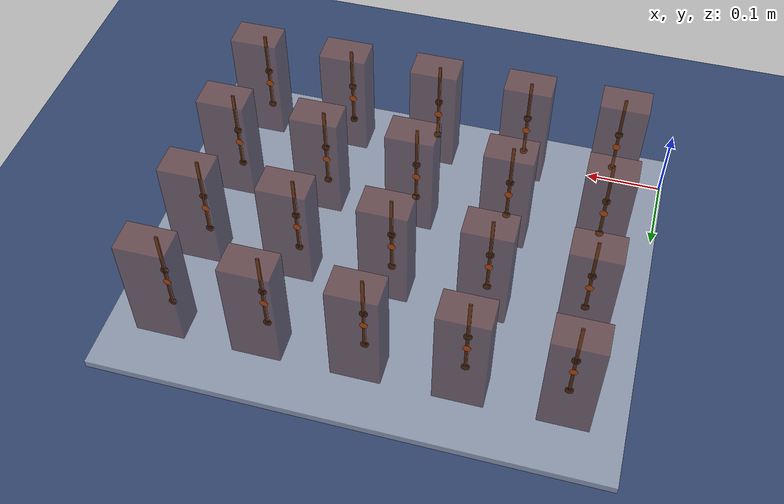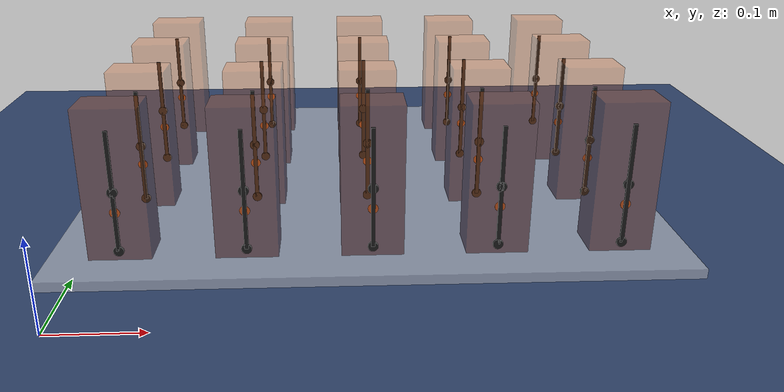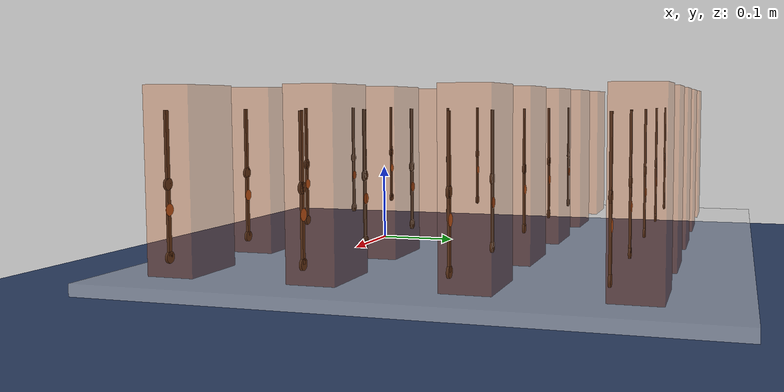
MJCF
<mujoco model="pendulum">
    <option gravity="0 0 -9.81" integrator="implicit" timestep="0.0001" iterations="1000" solver="Newton" tolerance="1e-18" noslip_tolerance="1e-9" o_solref="0.001 1" o_solimp="0.5 0.999 0.0001 0.1 6">
    </option>

    <visual>
        <global offheight="2160" offwidth="3840"/>
        <rgba haze=".3 .3 .3 1"/>
    </visual>

    <asset>
        <texture type="skybox" builtin="gradient" rgb1="0.6 0.6 0.6" rgb2="0 0 0" width="512" height="512"/>
        <texture name="texplane" type="2d" builtin="checker" rgb1=".15 .2 .35" rgb2=".2 .3 .45" width="512" height="512" mark="cross" markrgb=".8 .8 .8"/>
        <material name="matplane" reflectance="0.3" texture="texplane" texrepeat="1 1" texuniform="true"/>

        <material name="plate" rgba=".9 .9 .9 .5"/>
        <material name="pendulum" rgba=".9 .4 .1 .3"/>
        <material name="mass" rgba=".1 .1 .1 1"/>
    </asset>

    <default>
        <geom condim="3" friction="1 0.005 0.0001"/>
    </default>

    <worldbody>
        <camera name="fixed" pos="0.31 -0.6 0.5" xyaxes="1 0 0 0 0.58 1"/>

        <geom name="floor" pos="0 0 0" size="0 0 1" type="plane" material="matplane"/>
        <light directional="true" diffuse=".8 .8 .8" specular=".2 .2 .2" pos="0 0 5" dir="0 0 -1"/>

        <body pos="0 0 0.05">
            <joint name="plate" type="slide" axis="1 0 0" pos="0 0 0"/>
            <geom name="plate" type="box" pos="0.31 0.25 0" size="0.31 0.25 0.005" material="plate" mass="0.1"/>
        </body>

        <body pos="0.07 0.04 0.055">
            <joint name="p0_0boxX" type="slide" axis="1 0 0" pos="0 0 0"/>
            <joint name="p0_0boxZ" type="slide" axis="0 0 1" pos="0 0 0"/>

            <geom name="p0_0box" type="box" pos="0 0.02 0.075" size="0.03 0.02 0.075" material="pendulum" mass="0.1"/>

            <body pos="0 0 0.05">
                <joint name="p0_0hinge" type="hinge" pos="0 0 -0.001" axis="0 1 0"/>
                <geom name="p0_0hinge" type="cylinder" pos="0 -0.0001 -0.001" size="0.005 0.0001" zaxis="0 1 0" rgba=".7 .3 .1 1" mass= "0.001"/>

                <geom name="p0_0stick" type="box" pos="0 -0.0012 0.02" size="0.002 0.001 0.06" material="mass" mass="0.001"/>

                <geom name="p0_0massLower" type="cylinder" pos="0 -0.0012 -0.04" size="0.005 0.001" zaxis="0 1 0" material="mass" mass="0.3"/>
                <geom name="p0_0massUpper" type="cylinder" pos="0 -0.0012 0.02" size="0.005 0.001" zaxis="0 1 0" material="mass" mass="0.1"/>
            </body>
        </body>

        <body pos="0.19 0.04 0.055">
            <joint name="p0_1boxX" type="slide" axis="1 0 0" pos="0 0 0"/>
            <joint name="p0_1boxZ" type="slide" axis="0 0 1" pos="0 0 0"/>

            <geom name="p0_1box" type="box" pos="0 0.02 0.075" size="0.03 0.02 0.075" material="pendulum" mass="0.1"/>

            <body pos="0 0 0.05">
                <joint name="p0_1hinge" type="hinge" pos="0 0 -0.001" axis="0 1 0"/>
                <geom name="p0_1hinge" type="cylinder" pos="0 -0.0001 -0.001" size="0.005 0.0001" zaxis="0 1 0" rgba=".7 .3 .1 1" mass= "0.001"/>

                <geom name="p0_1stick" type="box" pos="0 -0.0012 0.02" size="0.002 0.001 0.06" material="mass" mass="0.001"/>

                <geom name="p0_1massLower" type="cylinder" pos="0 -0.0012 -0.04" size="0.005 0.001" zaxis="0 1 0" material="mass" mass="0.3"/>
                <geom name="p0_1massUpper" type="cylinder" pos="0 -0.0012 0.02" size="0.005 0.001" zaxis="0 1 0" material="mass" mass="0.1"/>
            </body>
        </body>

        <body pos="0.31 0.04 0.055">
            <joint name="p0_2boxX" type="slide" axis="1 0 0" pos="0 0 0"/>
            <joint name="p0_2boxZ" type="slide" axis="0 0 1" pos="0 0 0"/>

            <geom name="p0_2box" type="box" pos="0 0.02 0.075" size="0.03 0.02 0.075" material="pendulum" mass="0.1"/>

            <body pos="0 0 0.05">
                <joint name="p0_2hinge" type="hinge" pos="0 0 -0.001" axis="0 1 0"/>
                <geom name="p0_2hinge" type="cylinder" pos="0 -0.0001 -0.001" size="0.005 0.0001" zaxis="0 1 0" rgba=".7 .3 .1 1" mass= "0.001"/>

                <geom name="p0_2stick" type="box" pos="0 -0.0012 0.02" size="0.002 0.001 0.06" material="mass" mass="0.001"/>

                <geom name="p0_2massLower" type="cylinder" pos="0 -0.0012 -0.04" size="0.005 0.001" zaxis="0 1 0" material="mass" mass="0.3"/>
                <geom name="p0_2massUpper" type="cylinder" pos="0 -0.0012 0.02" size="0.005 0.001" zaxis="0 1 0" material="mass" mass="0.1"/>
            </body>
        </body>

        <body pos="0.43 0.04 0.055">
            <joint name="p0_3boxX" type="slide" axis="1 0 0" pos="0 0 0"/>
            <joint name="p0_3boxZ" type="slide" axis="0 0 1" pos="0 0 0"/>

            <geom name="p0_3box" type="box" pos="0 0.02 0.075" size="0.03 0.02 0.075" material="pendulum" mass="0.1"/>

            <body pos="0 0 0.05">
                <joint name="p0_3hinge" type="hinge" pos="0 0 -0.001" axis="0 1 0"/>
                <geom name="p0_3hinge" type="cylinder" pos="0 -0.0001 -0.001" size="0.005 0.0001" zaxis="0 1 0" rgba=".7 .3 .1 1" mass= "0.001"/>

                <geom name="p0_3stick" type="box" pos="0 -0.0012 0.02" size="0.002 0.001 0.06" material="mass" mass="0.001"/>

                <geom name="p0_3massLower" type="cylinder" pos="0 -0.0012 -0.04" size="0.005 0.001" zaxis="0 1 0" material="mass" mass="0.3"/>
                <geom name="p0_3massUpper" type="cylinder" pos="0 -0.0012 0.02" size="0.005 0.001" zaxis="0 1 0" material="mass" mass="0.1"/>
            </body>
        </body>

        <body pos="0.55 0.04 0.055">
            <joint name="p0_4boxX" type="slide" axis="1 0 0" pos="0 0 0"/>
            <joint name="p0_4boxZ" type="slide" axis="0 0 1" pos="0 0 0"/>

            <geom name="p0_4box" type="box" pos="0 0.02 0.075" size="0.03 0.02 0.075" material="pendulum" mass="0.1"/>

            <body pos="0 0 0.05">
                <joint name="p0_4hinge" type="hinge" pos="0 0 -0.001" axis="0 1 0"/>
                <geom name="p0_4hinge" type="cylinder" pos="0 -0.0001 -0.001" size="0.005 0.0001" zaxis="0 1 0" rgba=".7 .3 .1 1" mass= "0.001"/>

                <geom name="p0_4stick" type="box" pos="0 -0.0012 0.02" size="0.002 0.001 0.06" material="mass" mass="0.001"/>

                <geom name="p0_4massLower" type="cylinder" pos="0 -0.0012 -0.04" size="0.005 0.001" zaxis="0 1 0" material="mass" mass="0.3"/>
                <geom name="p0_4massUpper" type="cylinder" pos="0 -0.0012 0.02" size="0.005 0.001" zaxis="0 1 0" material="mass" mass="0.1"/>
            </body>
        </body>

        <body pos="0.07 0.16 0.055">
            <joint name="p1_0boxX" type="slide" axis="1 0 0" pos="0 0 0"/>
            <joint name="p1_0boxZ" type="slide" axis="0 0 1" pos="0 0 0"/>

            <geom name="p1_0box" type="box" pos="0 0.02 0.075" size="0.03 0.02 0.075" material="pendulum" mass="0.1"/>

            <body pos="0 0 0.05">
                <joint name="p1_0hinge" type="hinge" pos="0 0 -0.001" axis="0 1 0"/>
                <geom name="p1_0hinge" type="cylinder" pos="0 -0.0001 -0.001" size="0.005 0.0001" zaxis="0 1 0" rgba=".7 .3 .1 1" mass= "0.001"/>

                <geom name="p1_0stick" type="box" pos="0 -0.0012 0.02" size="0.002 0.001 0.06" material="mass" mass="0.001"/>

                <geom name="p1_0massLower" type="cylinder" pos="0 -0.0012 -0.04" size="0.005 0.001" zaxis="0 1 0" material="mass" mass="0.3"/>
                <geom name="p1_0massUpper" type="cylinder" pos="0 -0.0012 0.02" size="0.005 0.001" zaxis="0 1 0" material="mass" mass="0.1"/>
            </body>
        </body>

        <body pos="0.19 0.16 0.055">
            <joint name="p1_1boxX" type="slide" axis="1 0 0" pos="0 0 0"/>
            <joint name="p1_1boxZ" type="slide" axis="0 0 1" pos="0 0 0"/>

            <geom name="p1_1box" type="box" pos="0 0.02 0.075" size="0.03 0.02 0.075" material="pendulum" mass="0.1"/>

            <body pos="0 0 0.05">
                <joint name="p1_1hinge" type="hinge" pos="0 0 -0.001" axis="0 1 0"/>
                <geom name="p1_1hinge" type="cylinder" pos="0 -0.0001 -0.001" size="0.005 0.0001" zaxis="0 1 0" rgba=".7 .3 .1 1" mass= "0.001"/>

                <geom name="p1_1stick" type="box" pos="0 -0.0012 0.02" size="0.002 0.001 0.06" material="mass" mass="0.001"/>

                <geom name="p1_1massLower" type="cylinder" pos="0 -0.0012 -0.04" size="0.005 0.001" zaxis="0 1 0" material="mass" mass="0.3"/>
                <geom name="p1_1massUpper" type="cylinder" pos="0 -0.0012 0.02" size="0.005 0.001" zaxis="0 1 0" material="mass" mass="0.1"/>
            </body>
        </body>

        <body pos="0.31 0.16 0.055">
            <joint name="p1_2boxX" type="slide" axis="1 0 0" pos="0 0 0"/>
            <joint name="p1_2boxZ" type="slide" axis="0 0 1" pos="0 0 0"/>

            <geom name="p1_2box" type="box" pos="0 0.02 0.075" size="0.03 0.02 0.075" material="pendulum" mass="0.1"/>

            <body pos="0 0 0.05">
                <joint name="p1_2hinge" type="hinge" pos="0 0 -0.001" axis="0 1 0"/>
                <geom name="p1_2hinge" type="cylinder" pos="0 -0.0001 -0.001" size="0.005 0.0001" zaxis="0 1 0" rgba=".7 .3 .1 1" mass= "0.001"/>

                <geom name="p1_2stick" type="box" pos="0 -0.0012 0.02" size="0.002 0.001 0.06" material="mass" mass="0.001"/>

                <geom name="p1_2massLower" type="cylinder" pos="0 -0.0012 -0.04" size="0.005 0.001" zaxis="0 1 0" material="mass" mass="0.3"/>
                <geom name="p1_2massUpper" type="cylinder" pos="0 -0.0012 0.02" size="0.005 0.001" zaxis="0 1 0" material="mass" mass="0.1"/>
            </body>
        </body>

        <body pos="0.43 0.16 0.055">
            <joint name="p1_3boxX" type="slide" axis="1 0 0" pos="0 0 0"/>
            <joint name="p1_3boxZ" type="slide" axis="0 0 1" pos="0 0 0"/>

            <geom name="p1_3box" type="box" pos="0 0.02 0.075" size="0.03 0.02 0.075" material="pendulum" mass="0.1"/>

            <body pos="0 0 0.05">
                <joint name="p1_3hinge" type="hinge" pos="0 0 -0.001" axis="0 1 0"/>
                <geom name="p1_3hinge" type="cylinder" pos="0 -0.0001 -0.001" size="0.005 0.0001" zaxis="0 1 0" rgba=".7 .3 .1 1" mass= "0.001"/>

                <geom name="p1_3stick" type="box" pos="0 -0.0012 0.02" size="0.002 0.001 0.06" material="mass" mass="0.001"/>

                <geom name="p1_3massLower" type="cylinder" pos="0 -0.0012 -0.04" size="0.005 0.001" zaxis="0 1 0" material="mass" mass="0.3"/>
                <geom name="p1_3massUpper" type="cylinder" pos="0 -0.0012 0.02" size="0.005 0.001" zaxis="0 1 0" material="mass" mass="0.1"/>
            </body>
        </body>

        <body pos="0.55 0.16 0.055">
            <joint name="p1_4boxX" type="slide" axis="1 0 0" pos="0 0 0"/>
            <joint name="p1_4boxZ" type="slide" axis="0 0 1" pos="0 0 0"/>

            <geom name="p1_4box" type="box" pos="0 0.02 0.075" size="0.03 0.02 0.075" material="pendulum" mass="0.1"/>

            <body pos="0 0 0.05">
                <joint name="p1_4hinge" type="hinge" pos="0 0 -0.001" axis="0 1 0"/>
                <geom name="p1_4hinge" type="cylinder" pos="0 -0.0001 -0.001" size="0.005 0.0001" zaxis="0 1 0" rgba=".7 .3 .1 1" mass= "0.001"/>

                <geom name="p1_4stick" type="box" pos="0 -0.0012 0.02" size="0.002 0.001 0.06" material="mass" mass="0.001"/>

                <geom name="p1_4massLower" type="cylinder" pos="0 -0.0012 -0.04" size="0.005 0.001" zaxis="0 1 0" material="mass" mass="0.3"/>
                <geom name="p1_4massUpper" type="cylinder" pos="0 -0.0012 0.02" size="0.005 0.001" zaxis="0 1 0" material="mass" mass="0.1"/>
            </body>
        </body>

        <body pos="0.07 0.27999999999999997 0.055">
            <joint name="p2_0boxX" type="slide" axis="1 0 0" pos="0 0 0"/>
            <joint name="p2_0boxZ" type="slide" axis="0 0 1" pos="0 0 0"/>

            <geom name="p2_0box" type="box" pos="0 0.02 0.075" size="0.03 0.02 0.075" material="pendulum" mass="0.1"/>

            <body pos="0 0 0.05">
                <joint name="p2_0hinge" type="hinge" pos="0 0 -0.001" axis="0 1 0"/>
                <geom name="p2_0hinge" type="cylinder" pos="0 -0.0001 -0.001" size="0.005 0.0001" zaxis="0 1 0" rgba=".7 .3 .1 1" mass= "0.001"/>

                <geom name="p2_0stick" type="box" pos="0 -0.0012 0.02" size="0.002 0.001 0.06" material="mass" mass="0.001"/>

                <geom name="p2_0massLower" type="cylinder" pos="0 -0.0012 -0.04" size="0.005 0.001" zaxis="0 1 0" material="mass" mass="0.3"/>
                <geom name="p2_0massUpper" type="cylinder" pos="0 -0.0012 0.02" size="0.005 0.001" zaxis="0 1 0" material="mass" mass="0.1"/>
            </body>
        </body>

        <body pos="0.19 0.27999999999999997 0.055">
            <joint name="p2_1boxX" type="slide" axis="1 0 0" pos="0 0 0"/>
            <joint name="p2_1boxZ" type="slide" axis="0 0 1" pos="0 0 0"/>

            <geom name="p2_1box" type="box" pos="0 0.02 0.075" size="0.03 0.02 0.075" material="pendulum" mass="0.1"/>

            <body pos="0 0 0.05">
                <joint name="p2_1hinge" type="hinge" pos="0 0 -0.001" axis="0 1 0"/>
                <geom name="p2_1hinge" type="cylinder" pos="0 -0.0001 -0.001" size="0.005 0.0001" zaxis="0 1 0" rgba=".7 .3 .1 1" mass= "0.001"/>

                <geom name="p2_1stick" type="box" pos="0 -0.0012 0.02" size="0.002 0.001 0.06" material="mass" mass="0.001"/>

                <geom name="p2_1massLower" type="cylinder" pos="0 -0.0012 -0.04" size="0.005 0.001" zaxis="0 1 0" material="mass" mass="0.3"/>
                <geom name="p2_1massUpper" type="cylinder" pos="0 -0.0012 0.02" size="0.005 0.001" zaxis="0 1 0" material="mass" mass="0.1"/>
            </body>
        </body>

        <body pos="0.31 0.27999999999999997 0.055">
            <joint name="p2_2boxX" type="slide" axis="1 0 0" pos="0 0 0"/>
            <joint name="p2_2boxZ" type="slide" axis="0 0 1" pos="0 0 0"/>

            <geom name="p2_2box" type="box" pos="0 0.02 0.075" size="0.03 0.02 0.075" material="pendulum" mass="0.1"/>

            <body pos="0 0 0.05">
                <joint name="p2_2hinge" type="hinge" pos="0 0 -0.001" axis="0 1 0"/>
                <geom name="p2_2hinge" type="cylinder" pos="0 -0.0001 -0.001" size="0.005 0.0001" zaxis="0 1 0" rgba=".7 .3 .1 1" mass= "0.001"/>

                <geom name="p2_2stick" type="box" pos="0 -0.0012 0.02" size="0.002 0.001 0.06" material="mass" mass="0.001"/>

                <geom name="p2_2massLower" type="cylinder" pos="0 -0.0012 -0.04" size="0.005 0.001" zaxis="0 1 0" material="mass" mass="0.3"/>
                <geom name="p2_2massUpper" type="cylinder" pos="0 -0.0012 0.02" size="0.005 0.001" zaxis="0 1 0" material="mass" mass="0.1"/>
            </body>
        </body>

        <body pos="0.43 0.27999999999999997 0.055">
            <joint name="p2_3boxX" type="slide" axis="1 0 0" pos="0 0 0"/>
            <joint name="p2_3boxZ" type="slide" axis="0 0 1" pos="0 0 0"/>

            <geom name="p2_3box" type="box" pos="0 0.02 0.075" size="0.03 0.02 0.075" material="pendulum" mass="0.1"/>

            <body pos="0 0 0.05">
                <joint name="p2_3hinge" type="hinge" pos="0 0 -0.001" axis="0 1 0"/>
                <geom name="p2_3hinge" type="cylinder" pos="0 -0.0001 -0.001" size="0.005 0.0001" zaxis="0 1 0" rgba=".7 .3 .1 1" mass= "0.001"/>

                <geom name="p2_3stick" type="box" pos="0 -0.0012 0.02" size="0.002 0.001 0.06" material="mass" mass="0.001"/>

                <geom name="p2_3massLower" type="cylinder" pos="0 -0.0012 -0.04" size="0.005 0.001" zaxis="0 1 0" material="mass" mass="0.3"/>
                <geom name="p2_3massUpper" type="cylinder" pos="0 -0.0012 0.02" size="0.005 0.001" zaxis="0 1 0" material="mass" mass="0.1"/>
            </body>
        </body>

        <body pos="0.55 0.27999999999999997 0.055">
            <joint name="p2_4boxX" type="slide" axis="1 0 0" pos="0 0 0"/>
            <joint name="p2_4boxZ" type="slide" axis="0 0 1" pos="0 0 0"/>

            <geom name="p2_4box" type="box" pos="0 0.02 0.075" size="0.03 0.02 0.075" material="pendulum" mass="0.1"/>

            <body pos="0 0 0.05">
                <joint name="p2_4hinge" type="hinge" pos="0 0 -0.001" axis="0 1 0"/>
                <geom name="p2_4hinge" type="cylinder" pos="0 -0.0001 -0.001" size="0.005 0.0001" zaxis="0 1 0" rgba=".7 .3 .1 1" mass= "0.001"/>

                <geom name="p2_4stick" type="box" pos="0 -0.0012 0.02" size="0.002 0.001 0.06" material="mass" mass="0.001"/>

                <geom name="p2_4massLower" type="cylinder" pos="0 -0.0012 -0.04" size="0.005 0.001" zaxis="0 1 0" material="mass" mass="0.3"/>
                <geom name="p2_4massUpper" type="cylinder" pos="0 -0.0012 0.02" size="0.005 0.001" zaxis="0 1 0" material="mass" mass="0.1"/>
            </body>
        </body>

        <body pos="0.07 0.39999999999999997 0.055">
            <joint name="p3_0boxX" type="slide" axis="1 0 0" pos="0 0 0"/>
            <joint name="p3_0boxZ" type="slide" axis="0 0 1" pos="0 0 0"/>

            <geom name="p3_0box" type="box" pos="0 0.02 0.075" size="0.03 0.02 0.075" material="pendulum" mass="0.1"/>

            <body pos="0 0 0.05">
                <joint name="p3_0hinge" type="hinge" pos="0 0 -0.001" axis="0 1 0"/>
                <geom name="p3_0hinge" type="cylinder" pos="0 -0.0001 -0.001" size="0.005 0.0001" zaxis="0 1 0" rgba=".7 .3 .1 1" mass= "0.001"/>

                <geom name="p3_0stick" type="box" pos="0 -0.0012 0.02" size="0.002 0.001 0.06" material="mass" mass="0.001"/>

                <geom name="p3_0massLower" type="cylinder" pos="0 -0.0012 -0.04" size="0.005 0.001" zaxis="0 1 0" material="mass" mass="0.3"/>
                <geom name="p3_0massUpper" type="cylinder" pos="0 -0.0012 0.02" size="0.005 0.001" zaxis="0 1 0" material="mass" mass="0.1"/>
            </body>
        </body>

        <body pos="0.19 0.39999999999999997 0.055">
            <joint name="p3_1boxX" type="slide" axis="1 0 0" pos="0 0 0"/>
            <joint name="p3_1boxZ" type="slide" axis="0 0 1" pos="0 0 0"/>

            <geom name="p3_1box" type="box" pos="0 0.02 0.075" size="0.03 0.02 0.075" material="pendulum" mass="0.1"/>

            <body pos="0 0 0.05">
                <joint name="p3_1hinge" type="hinge" pos="0 0 -0.001" axis="0 1 0"/>
                <geom name="p3_1hinge" type="cylinder" pos="0 -0.0001 -0.001" size="0.005 0.0001" zaxis="0 1 0" rgba=".7 .3 .1 1" mass= "0.001"/>

                <geom name="p3_1stick" type="box" pos="0 -0.0012 0.02" size="0.002 0.001 0.06" material="mass" mass="0.001"/>

                <geom name="p3_1massLower" type="cylinder" pos="0 -0.0012 -0.04" size="0.005 0.001" zaxis="0 1 0" material="mass" mass="0.3"/>
                <geom name="p3_1massUpper" type="cylinder" pos="0 -0.0012 0.02" size="0.005 0.001" zaxis="0 1 0" material="mass" mass="0.1"/>
            </body>
        </body>

        <body pos="0.31 0.39999999999999997 0.055">
            <joint name="p3_2boxX" type="slide" axis="1 0 0" pos="0 0 0"/>
            <joint name="p3_2boxZ" type="slide" axis="0 0 1" pos="0 0 0"/>

            <geom name="p3_2box" type="box" pos="0 0.02 0.075" size="0.03 0.02 0.075" material="pendulum" mass="0.1"/>

            <body pos="0 0 0.05">
                <joint name="p3_2hinge" type="hinge" pos="0 0 -0.001" axis="0 1 0"/>
                <geom name="p3_2hinge" type="cylinder" pos="0 -0.0001 -0.001" size="0.005 0.0001" zaxis="0 1 0" rgba=".7 .3 .1 1" mass= "0.001"/>

                <geom name="p3_2stick" type="box" pos="0 -0.0012 0.02" size="0.002 0.001 0.06" material="mass" mass="0.001"/>

                <geom name="p3_2massLower" type="cylinder" pos="0 -0.0012 -0.04" size="0.005 0.001" zaxis="0 1 0" material="mass" mass="0.3"/>
                <geom name="p3_2massUpper" type="cylinder" pos="0 -0.0012 0.02" size="0.005 0.001" zaxis="0 1 0" material="mass" mass="0.1"/>
            </body>
        </body>

        <body pos="0.43 0.39999999999999997 0.055">
            <joint name="p3_3boxX" type="slide" axis="1 0 0" pos="0 0 0"/>
            <joint name="p3_3boxZ" type="slide" axis="0 0 1" pos="0 0 0"/>

            <geom name="p3_3box" type="box" pos="0 0.02 0.075" size="0.03 0.02 0.075" material="pendulum" mass="0.1"/>

            <body pos="0 0 0.05">
                <joint name="p3_3hinge" type="hinge" pos="0 0 -0.001" axis="0 1 0"/>
                <geom name="p3_3hinge" type="cylinder" pos="0 -0.0001 -0.001" size="0.005 0.0001" zaxis="0 1 0" rgba=".7 .3 .1 1" mass= "0.001"/>

                <geom name="p3_3stick" type="box" pos="0 -0.0012 0.02" size="0.002 0.001 0.06" material="mass" mass="0.001"/>

                <geom name="p3_3massLower" type="cylinder" pos="0 -0.0012 -0.04" size="0.005 0.001" zaxis="0 1 0" material="mass" mass="0.3"/>
                <geom name="p3_3massUpper" type="cylinder" pos="0 -0.0012 0.02" size="0.005 0.001" zaxis="0 1 0" material="mass" mass="0.1"/>
            </body>
        </body>

        <body pos="0.55 0.39999999999999997 0.055">
            <joint name="p3_4boxX" type="slide" axis="1 0 0" pos="0 0 0"/>
            <joint name="p3_4boxZ" type="slide" axis="0 0 1" pos="0 0 0"/>

            <geom name="p3_4box" type="box" pos="0 0.02 0.075" size="0.03 0.02 0.075" material="pendulum" mass="0.1"/>

            <body pos="0 0 0.05">
                <joint name="p3_4hinge" type="hinge" pos="0 0 -0.001" axis="0 1 0"/>
                <geom name="p3_4hinge" type="cylinder" pos="0 -0.0001 -0.001" size="0.005 0.0001" zaxis="0 1 0" rgba=".7 .3 .1 1" mass= "0.001"/>

                <geom name="p3_4stick" type="box" pos="0 -0.0012 0.02" size="0.002 0.001 0.06" material="mass" mass="0.001"/>

                <geom name="p3_4massLower" type="cylinder" pos="0 -0.0012 -0.04" size="0.005 0.001" zaxis="0 1 0" material="mass" mass="0.3"/>
                <geom name="p3_4massUpper" type="cylinder" pos="0 -0.0012 0.02" size="0.005 0.001" zaxis="0 1 0" material="mass" mass="0.1"/>
            </body>
        </body>
    </worldbody>
</mujoco>
